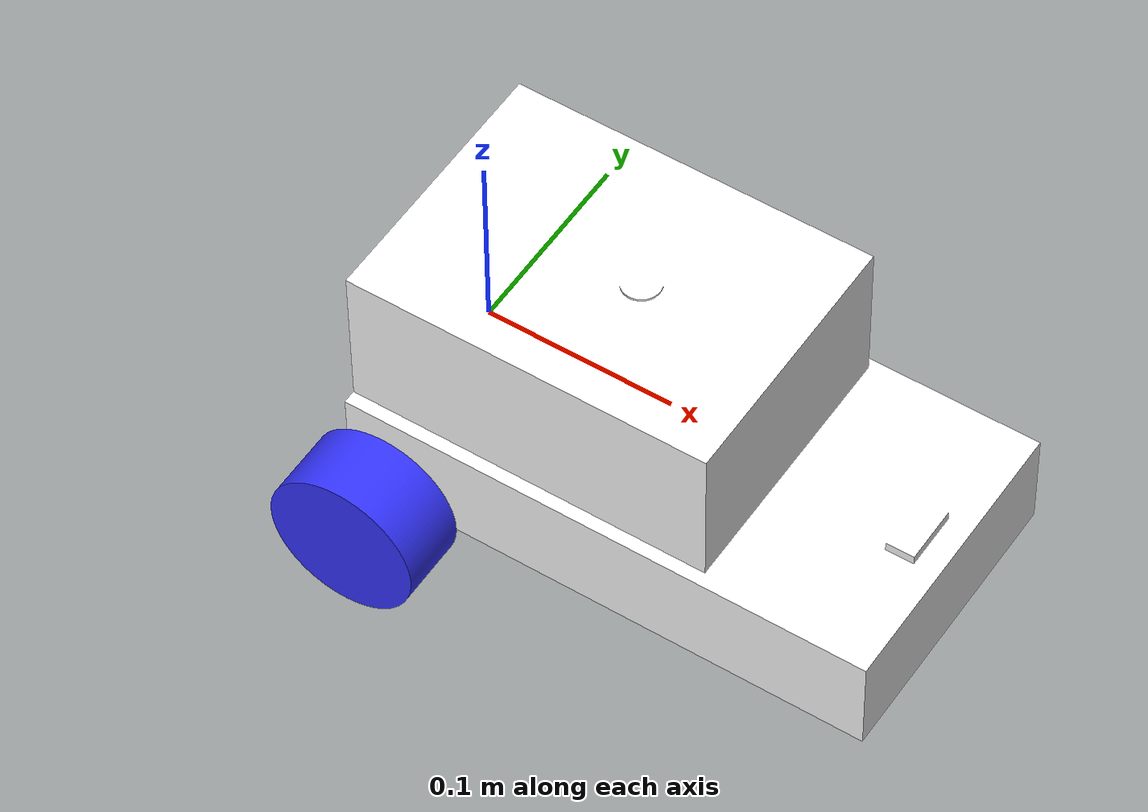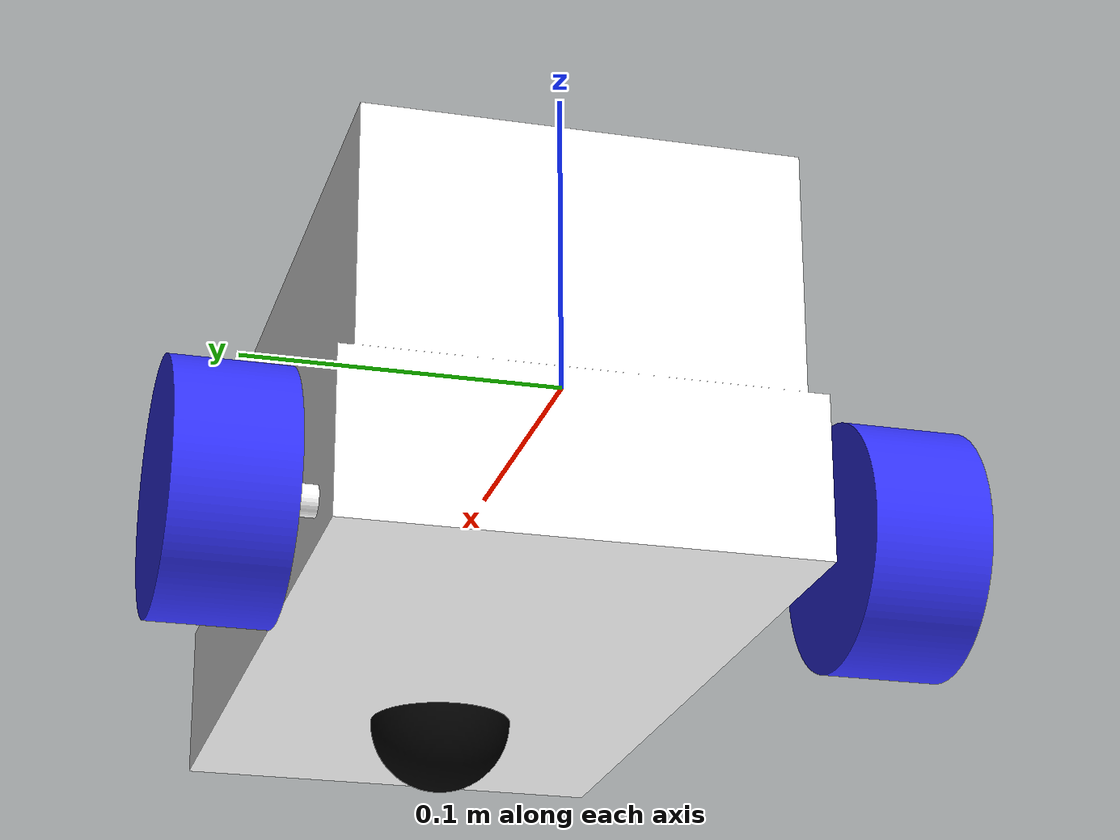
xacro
<?xml version="1.0"?>
<robot xmlns:xacro="http://www.ros.org/wiki/xacro"  >

    <xacro:include filename="inertial_macros.xacro"/>
    <xacro:include filename="$(find ROS_rover_urdf_description)/urdf/materials.xacro" />
    <xacro:include filename="$(find ROS_rover_urdf_description)/urdf/ROS_rover_urdf.trans" />
    <xacro:include filename="$(find ROS_rover_urdf_description)/urdf/ROS_rover_urdf.gazebo" />

    <material name="white">
        <color rgba="1 1 1 1" />
    </material>

    <material name="orange">
        <color rgba="1 0.3 0.1 1" />
    </material>

    <material name="blue">
        <color rgba="0.2 0.2 1 1" />
    </material>

    <material name="black">
        <color rgba="0 0 0 1" />
    </material>

    <material name="red">
        <color rgba="1 0 0 1" />
    </material>

<!-- BASE LINK -->

    <link name="base_link">
      <origin xyz="0 0 0" rpy="0 0 0"/>
    </link>

    <!-- BASE_FOOTPRINT LINK -->

    <joint name="base_footprint_joint" type="fixed">
        <parent link="base_link"/>
        <child link="base_footprint"/>
        <origin xyz="0 0 0" rpy="0 0 0"/>
    </joint>

    <link name="base_footprint">
    </link>

<!-- CHASSIS LINK -->

    <joint name="chassis_joint" type="fixed">
        <parent link="base_link" />
        <child link="chassis" />
        <origin xyz="0.108526747687202506 -0.12224166560310168 -0.08643892236095495"/>
    </joint>

    <link name="chassis">
        <inertial>
            <origin xyz="-0.018526747687202506 0.12224166560310168 0.08643892236095495" rpy="0 0 0"/>
            <mass value="34.90606826800328"/>
            <inertia ixx="0.114886" iyy="0.239343" izz="0.249193" ixy="0.000401" iyz="-0.000589" ixz="0.025841"/>
          </inertial>
          <visual>
            <origin xyz="0 0 0" rpy="0 0 0"/>
            <geometry>
              <mesh filename="file://$(find ROS_rover_urdf_description)/meshes/base_link.stl" scale="0.001 0.001 0.001"/>
            </geometry>
            <material name="white"/>
          </visual>
          <collision>
            <origin xyz="0 0 0" rpy="0 0 0"/>
            <geometry>
              <mesh filename="file://$(find ROS_rover_urdf_description)/meshes/base_link.stl" scale="0.001 0.001 0.001"/>
            </geometry>
          </collision>
    </link>

    <gazebo reference="chassis">
        <material>Gazebo/White</material>
    </gazebo>

<!-- LEFT WHEEL LINK-->

    <joint name="left_wheel_joint" type="continuous">
        <parent link="chassis"/>
        <child link="left_wheel"/>
        <origin xyz="-0.109883 0.2086 0.041686" rpy="0 0 0"/>
        <axis xyz="0 1 0"/>
    </joint>

    <link name="left_wheel">
        <inertial>
            <origin xyz="4.24215932839922e-07 0.01849999999999999 8.092045233193401e-08" rpy="0 0 0"/>
            <mass value="1.3878753666636712"/>
            <inertia ixx="0.000686" iyy="0.001055" izz="0.000686" ixy="0.0" iyz="0.0" ixz="-0.0"/>
          </inertial>
          <visual>
            <origin xyz="0.109883 -0.2086 -0.041686" rpy="0 0 0"/>
            <geometry>
              <mesh filename="file://$(find ROS_rover_urdf_description)/meshes/Left_wheel_1.stl" scale="0.001 0.001 0.001"/>
            </geometry>
            <material name="blue"/>
          </visual>
          <collision>
            <origin xyz="0.109883 -0.2086 -0.041686" rpy="0 0 0"/>
            <geometry>
              <mesh filename="file://$(find ROS_rover_urdf_description)/meshes/Left_wheel_1.stl" scale="0.001 0.001 0.001"/>
            </geometry>
          </collision>
    </link>

    <gazebo reference="left_wheel">
        <material>Gazebo/Blue</material>
    </gazebo>

<!-- RIGHT WHEEL LINK-->

<joint name="right_wheel_joint" type="continuous">
    <origin xyz="-0.109883 0.037 0.041686" rpy="0 0 0"/>
    <parent link="chassis"/>
    <child link="right_wheel"/>
    <axis xyz="0.0 1.0 0.0"/>
</joint>

<link name="right_wheel">
    <inertial>
        <origin xyz="4.24215932839922e-07 -0.018500000000000003 8.09204523458118e-08" rpy="0 0 0"/>
        <mass value="1.3878753666636718"/>
        <inertia ixx="0.000686" iyy="0.001055" izz="0.000686" ixy="-0.0" iyz="0.0" ixz="-0.0"/>
      </inertial>
      <visual>
        <origin xyz="0.109883 -0.037 -0.041686" rpy="0 0 0"/>
        <geometry>
          <mesh filename="file://$(find ROS_rover_urdf_description)/meshes/Right_wheel_1.stl" scale="0.001 0.001 0.001"/>
        </geometry>
        <material name="blue"/>
      </visual>
      <collision>
        <origin xyz="0.109883 -0.037 -0.041686" rpy="0 0 0"/>
        <geometry>
          <mesh filename="file://$(find ROS_rover_urdf_description)/meshes/Right_wheel_1.stl" scale="0.001 0.001 0.001"/>
        </geometry>
      </collision>
</link>

<gazebo reference="right_wheel">
    <material>Gazebo/Blue</material>
</gazebo>

<!-- CASTER WHEEL LINK-->

<joint name="caster_wheel_joint" type="fixed">
    <parent link="chassis"/>
    <child link="castor_wheel"/>
    <origin xyz="0.05652 0.121748 0.027021" rpy="0 0 0"/>
    <axis xyz="0.0 0.0 -1.0"/>
</joint>

<link name="castor_wheel">
    <inertial>
        <origin xyz="2.7755575615628914e-17 -1.4670485243284404e-08 3.1211140116491065e-07" rpy="0 0 0"/>
        <mass value="0.4809809344697313"/>
        <inertia ixx="0.000115" iyy="0.000115" izz="0.000115" ixy="0.0" iyz="0.0" ixz="0.0"/>
      </inertial>
      <visual>
        <origin xyz="-0.05652 -0.121748 -0.027021" rpy="0 0 0"/>
        <geometry>
          <mesh filename="file://$(find ROS_rover_urdf_description)/meshes/_front_ball_1.stl" scale="0.001 0.001 0.001"/>
        </geometry>
        <material name="black"/>
      </visual>
      <collision>
        <origin xyz="-0.05652 -0.121748 -0.027021" rpy="0 0 0"/>
        <geometry>
          <mesh filename="file://$(find ROS_rover_urdf_description)/meshes/_front_ball_1.stl" scale="0.001 0.001 0.001"/>
        </geometry>
      </collision>
</link>

<gazebo reference="castor_wheel">
    <material>Gazebo/Black</material>
    <mu1 value="0.001"/>
    <mu2 value="0.001"/>
</gazebo>

</robot>

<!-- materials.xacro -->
<robot name="ROS_rover_urdf" xmlns:xacro="http://www.ros.org/wiki/xacro" >

<material name="silver">
  <color rgba="0.700 0.700 0.700 1.000"/>
</material>

</robot>

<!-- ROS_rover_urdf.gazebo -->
<robot name="ROS_rover_urdf" xmlns:xacro="http://www.ros.org/wiki/xacro" >

<xacro:property name="body_color" value="Gazebo/Silver" />

<gazebo>
  <plugin name="control" filename="libgazebo_ros_control.so"/>
</gazebo>
<gazebo reference="base_link">
  <material>${body_color}</material>
  <mu1>0.2</mu1>
  <mu2>0.2</mu2>
  <self_collide>true</self_collide>
  <gravity>true</gravity>
</gazebo>

<gazebo reference="Right_wheel_1">
  <material>${body_color}</material>
  <mu1>0.2</mu1>
  <mu2>0.2</mu2>
  <self_collide>true</self_collide>
</gazebo>

<gazebo reference="Left_wheel_1">
  <material>${body_color}</material>
  <mu1>0.2</mu1>
  <mu2>0.2</mu2>
  <self_collide>true</self_collide>
</gazebo>

<gazebo reference="_front_ball_1">
  <material>${body_color}</material>
  <mu1>0.2</mu1>
  <mu2>0.2</mu2>
  <self_collide>true</self_collide>
</gazebo>

<gazebo reference="Cam_1">
  <material>${body_color}</material>
  <mu1>0.2</mu1>
  <mu2>0.2</mu2>
  <self_collide>true</self_collide>
</gazebo>

<gazebo reference="Lidar_1">
  <material>${body_color}</material>
  <mu1>0.2</mu1>
  <mu2>0.2</mu2>
  <self_collide>true</self_collide>
</gazebo>

</robot>
